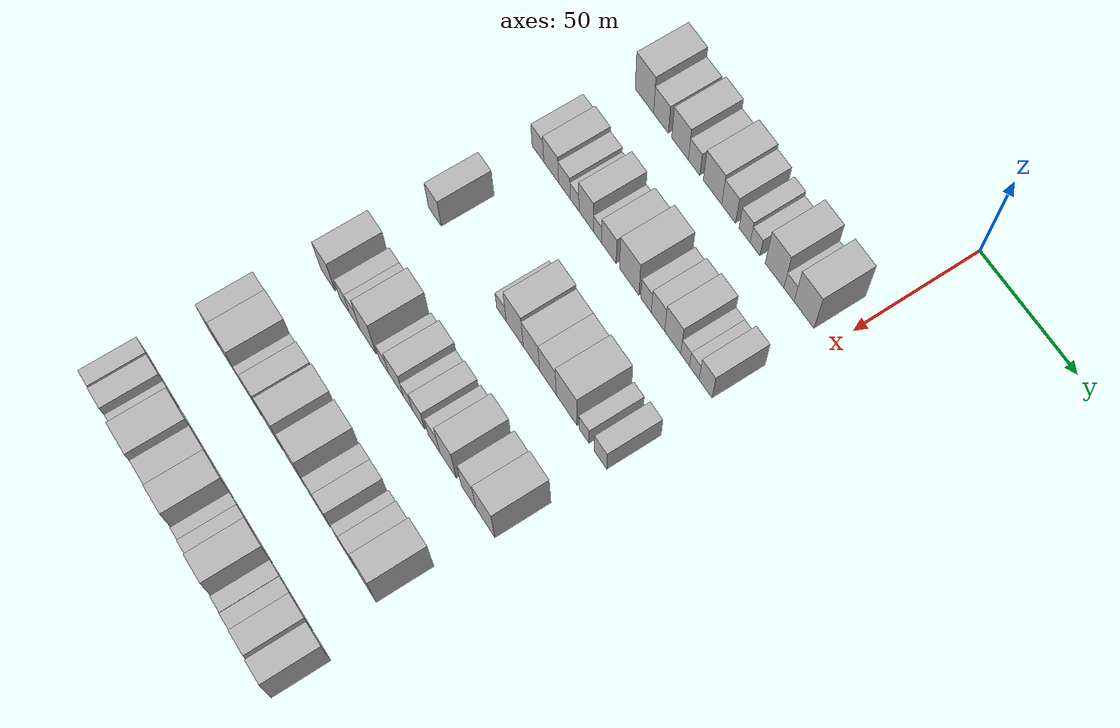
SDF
<sdf version="1.6">
 <world name="default">
  <model name="building_59">
   <static>1</static>
   <pose>50.0000 -103.9284 0 0.000000 0.000000 0.000000</pose>
   <link name="link">
    <pose>0 0 12.00 0 0 0</pose>
    <collision name="collision"><geometry><box><size>20.0000 10.9934 24.0000</size></box></geometry></collision>
    <visual name="visual">
     <cast_shadows>0</cast_shadows>
     <geometry><box><size>20.0000 10.9934 24.0000</size></box></geometry>
     <material>
      <script>
       <uri>model://HANNAS_wall/materials/scripts</uri>
       <uri>model://HANNAS_wall/materials/textures</uri>
       <name>vrc/HANNAS_wall</name>
      </script>
     </material>
    </visual>
   </link>
  </model>
  <model name="building_60">
   <static>1</static>
   <pose>50.0000 -94.0672 0 0.000000 0.000000 0.000000</pose>
   <link name="link">
    <pose>0 0 9.00 0 0 0</pose>
    <collision name="collision"><geometry><box><size>20.0000 8.7290 18.0000</size></box></geometry></collision>
    <visual name="visual">
     <cast_shadows>0</cast_shadows>
     <geometry><box><size>20.0000 8.7290 18.0000</size></box></geometry>
     <material>
      <script>
       <uri>model://HANNAS_wall/materials/scripts</uri>
       <uri>model://HANNAS_wall/materials/textures</uri>
       <name>vrc/HANNAS_wall</name>
      </script>
     </material>
    </visual>
   </link>
  </model>
  <model name="building_61">
   <static>1</static>
   <pose>50.0000 -82.8539 0 0.000000 0.000000 0.000000</pose>
   <link name="link">
    <pose>0 0 10.50 0 0 0</pose>
    <collision name="collision"><geometry><box><size>20.0000 9.6976 21.0000</size></box></geometry></collision>
    <visual name="visual">
     <cast_shadows>0</cast_shadows>
     <geometry><box><size>20.0000 9.6976 21.0000</size></box></geometry>
     <material>
      <script>
       <uri>model://HANNAS_wall/materials/scripts</uri>
       <uri>model://HANNAS_wall/materials/textures</uri>
       <name>vrc/HANNAS_wall</name>
      </script>
     </material>
    </visual>
   </link>
  </model>
  <model name="building_62">
   <static>1</static>
   <pose>50.0000 -74.6640 0 0.000000 0.000000 0.000000</pose>
   <link name="link">
    <pose>0 0 7.50 0 0 0</pose>
    <collision name="collision"><geometry><box><size>20.0000 6.6820 15.0000</size></box></geometry></collision>
    <visual name="visual">
     <cast_shadows>0</cast_shadows>
     <geometry><box><size>20.0000 6.6820 15.0000</size></box></geometry>
     <material>
      <script>
       <uri>model://HANNAS_wall/materials/scripts</uri>
       <uri>model://HANNAS_wall/materials/textures</uri>
       <name>vrc/HANNAS_wall</name>
      </script>
     </material>
    </visual>
   </link>
  </model>
  <model name="building_63">
   <static>1</static>
   <pose>50.0000 -64.0740 0 0.000000 0.000000 0.000000</pose>
   <link name="link">
    <pose>0 0 10.50 0 0 0</pose>
    <collision name="collision"><geometry><box><size>20.0000 10.4980 21.0000</size></box></geometry></collision>
    <visual name="visual">
     <cast_shadows>0</cast_shadows>
     <geometry><box><size>20.0000 10.4980 21.0000</size></box></geometry>
     <material>
      <script>
       <uri>model://HANNAS_wall/materials/scripts</uri>
       <uri>model://HANNAS_wall/materials/textures</uri>
       <name>vrc/HANNAS_wall</name>
      </script>
     </material>
    </visual>
   </link>
  </model>
  <model name="building_64">
   <static>1</static>
   <pose>50.0000 -54.8764 0 0.000000 0.000000 0.000000</pose>
   <link name="link">
    <pose>0 0 9.00 0 0 0</pose>
    <collision name="collision"><geometry><box><size>20.0000 7.8972 18.0000</size></box></geometry></collision>
    <visual name="visual">
     <cast_shadows>0</cast_shadows>
     <geometry><box><size>20.0000 7.8972 18.0000</size></box></geometry>
     <material>
      <script>
       <uri>model://HANNAS_wall/materials/scripts</uri>
       <uri>model://HANNAS_wall/materials/textures</uri>
       <name>vrc/HANNAS_wall</name>
      </script>
     </material>
    </visual>
   </link>
  </model>
  <model name="building_65">
   <static>1</static>
   <pose>50.0000 -45.8027 0 0.000000 0.000000 0.000000</pose>
   <link name="link">
    <pose>0 0 7.50 0 0 0</pose>
    <collision name="collision"><geometry><box><size>20.0000 6.2502 15.0000</size></box></geometry></collision>
    <visual name="visual">
     <cast_shadows>0</cast_shadows>
     <geometry><box><size>20.0000 6.2502 15.0000</size></box></geometry>
     <material>
      <script>
       <uri>model://HANNAS_wall/materials/scripts</uri>
       <uri>model://HANNAS_wall/materials/textures</uri>
       <name>vrc/HANNAS_wall</name>
      </script>
     </material>
    </visual>
   </link>
  </model>
  <model name="building_66">
   <static>1</static>
   <pose>50.0000 -39.9302 0 0.000000 0.000000 0.000000</pose>
   <link name="link">
    <pose>0 0 6.00 0 0 0</pose>
    <collision name="collision"><geometry><box><size>20.0000 5.4947 12.0000</size></box></geometry></collision>
    <visual name="visual">
     <cast_shadows>0</cast_shadows>
     <geometry><box><size>20.0000 5.4947 12.0000</size></box></geometry>
     <material>
      <script>
       <uri>model://HANNAS_wall/materials/scripts</uri>
       <uri>model://HANNAS_wall/materials/textures</uri>
       <name>vrc/HANNAS_wall</name>
      </script>
     </material>
    </visual>
   </link>
  </model>
  <model name="building_67">
   <static>1</static>
   <pose>50.0000 -29.0658 0 0.000000 0.000000 0.000000</pose>
   <link name="link">
    <pose>0 0 12.00 0 0 0</pose>
    <collision name="collision"><geometry><box><size>20.0000 10.2342 24.0000</size></box></geometry></collision>
    <visual name="visual">
     <cast_shadows>0</cast_shadows>
     <geometry><box><size>20.0000 10.2342 24.0000</size></box></geometry>
     <material>
      <script>
       <uri>model://HANNAS_wall/materials/scripts</uri>
       <uri>model://HANNAS_wall/materials/textures</uri>
       <name>vrc/HANNAS_wall</name>
      </script>
     </material>
    </visual>
   </link>
  </model>
  <model name="building_68">
   <static>1</static>
   <pose>50.0000 -21.1430 0 0.000000 0.000000 0.000000</pose>
   <link name="link">
    <pose>0 0 6.00 0 0 0</pose>
    <collision name="collision"><geometry><box><size>20.0000 5.6113 12.0000</size></box></geometry></collision>
    <visual name="visual">
     <cast_shadows>0</cast_shadows>
     <geometry><box><size>20.0000 5.6113 12.0000</size></box></geometry>
     <material>
      <script>
       <uri>model://HANNAS_wall/materials/scripts</uri>
       <uri>model://HANNAS_wall/materials/textures</uri>
       <name>vrc/HANNAS_wall</name>
      </script>
     </material>
    </visual>
   </link>
  </model>
  <model name="building_69">
   <static>1</static>
   <pose>50.0000 -12.9018 0 0.000000 0.000000 0.000000</pose>
   <link name="link">
    <pose>0 0 12.00 0 0 0</pose>
    <collision name="collision"><geometry><box><size>20.0000 10.8712 24.0000</size></box></geometry></collision>
    <visual name="visual">
     <cast_shadows>0</cast_shadows>
     <geometry><box><size>20.0000 10.8712 24.0000</size></box></geometry>
     <material>
      <script>
       <uri>model://HANNAS_wall/materials/scripts</uri>
       <uri>model://HANNAS_wall/materials/textures</uri>
       <name>vrc/HANNAS_wall</name>
      </script>
     </material>
    </visual>
   </link>
  </model>
  <model name="building_197">
   <static>1</static>
   <pose>90.0000 -106.6463 0 0.000000 0.000000 0.000000</pose>
   <link name="link">
    <pose>0 0 7.50 0 0 0</pose>
    <collision name="collision"><geometry><box><size>20.0000 7.0542 15.0000</size></box></geometry></collision>
    <visual name="visual">
     <cast_shadows>0</cast_shadows>
     <geometry><box><size>20.0000 7.0542 15.0000</size></box></geometry>
     <material>
      <script>
       <uri>model://HANNAS_wall/materials/scripts</uri>
       <uri>model://HANNAS_wall/materials/textures</uri>
       <name>vrc/HANNAS_wall</name>
      </script>
     </material>
    </visual>
   </link>
  </model>
  <model name="building_198">
   <static>1</static>
   <pose>90.0000 -98.6274 0 0.000000 0.000000 0.000000</pose>
   <link name="link">
    <pose>0 0 9.00 0 0 0</pose>
    <collision name="collision"><geometry><box><size>20.0000 8.9837 18.0000</size></box></geometry></collision>
    <visual name="visual">
     <cast_shadows>0</cast_shadows>
     <geometry><box><size>20.0000 8.9837 18.0000</size></box></geometry>
     <material>
      <script>
       <uri>model://HANNAS_wall/materials/scripts</uri>
       <uri>model://HANNAS_wall/materials/textures</uri>
       <name>vrc/HANNAS_wall</name>
      </script>
     </material>
    </visual>
   </link>
  </model>
  <model name="building_199">
   <static>1</static>
   <pose>90.0000 -90.6472 0 0.000000 0.000000 0.000000</pose>
   <link name="link">
    <pose>0 0 7.50 0 0 0</pose>
    <collision name="collision"><geometry><box><size>20.0000 6.9767 15.0000</size></box></geometry></collision>
    <visual name="visual">
     <cast_shadows>0</cast_shadows>
     <geometry><box><size>20.0000 6.9767 15.0000</size></box></geometry>
     <material>
      <script>
       <uri>model://HANNAS_wall/materials/scripts</uri>
       <uri>model://HANNAS_wall/materials/textures</uri>
       <name>vrc/HANNAS_wall</name>
      </script>
     </material>
    </visual>
   </link>
  </model>
  <model name="building_200">
   <static>1</static>
   <pose>90.0000 -84.5414 0 0.000000 0.000000 0.000000</pose>
   <link name="link">
    <pose>0 0 6.00 0 0 0</pose>
    <collision name="collision"><geometry><box><size>20.0000 5.2349 12.0000</size></box></geometry></collision>
    <visual name="visual">
     <cast_shadows>0</cast_shadows>
     <geometry><box><size>20.0000 5.2349 12.0000</size></box></geometry>
     <material>
      <script>
       <uri>model://HANNAS_wall/materials/scripts</uri>
       <uri>model://HANNAS_wall/materials/textures</uri>
       <name>vrc/HANNAS_wall</name>
      </script>
     </material>
    </visual>
   </link>
  </model>
  <model name="building_201">
   <static>1</static>
   <pose>90.0000 -77.6360 0 0.000000 0.000000 0.000000</pose>
   <link name="link">
    <pose>0 0 10.50 0 0 0</pose>
    <collision name="collision"><geometry><box><size>20.0000 8.5759 21.0000</size></box></geometry></collision>
    <visual name="visual">
     <cast_shadows>0</cast_shadows>
     <geometry><box><size>20.0000 8.5759 21.0000</size></box></geometry>
     <material>
      <script>
       <uri>model://HANNAS_wall/materials/scripts</uri>
       <uri>model://HANNAS_wall/materials/textures</uri>
       <name>vrc/HANNAS_wall</name>
      </script>
     </material>
    </visual>
   </link>
  </model>
  <model name="building_202">
   <static>1</static>
   <pose>90.0000 -70.9441 0 0.000000 0.000000 0.000000</pose>
   <link name="link">
    <pose>0 0 6.00 0 0 0</pose>
    <collision name="collision"><geometry><box><size>20.0000 4.8079 12.0000</size></box></geometry></collision>
    <visual name="visual">
     <cast_shadows>0</cast_shadows>
     <geometry><box><size>20.0000 4.8079 12.0000</size></box></geometry>
     <material>
      <script>
       <uri>model://HANNAS_wall/materials/scripts</uri>
       <uri>model://HANNAS_wall/materials/textures</uri>
       <name>vrc/HANNAS_wall</name>
      </script>
     </material>
    </visual>
   </link>
  </model>
  <model name="building_203">
   <static>1</static>
   <pose>90.0000 -64.2863 0 0.000000 0.000000 0.000000</pose>
   <link name="link">
    <pose>0 0 9.00 0 0 0</pose>
    <collision name="collision"><geometry><box><size>20.0000 8.5078 18.0000</size></box></geometry></collision>
    <visual name="visual">
     <cast_shadows>0</cast_shadows>
     <geometry><box><size>20.0000 8.5078 18.0000</size></box></geometry>
     <material>
      <script>
       <uri>model://HANNAS_wall/materials/scripts</uri>
       <uri>model://HANNAS_wall/materials/textures</uri>
       <name>vrc/HANNAS_wall</name>
      </script>
     </material>
    </visual>
   </link>
  </model>
  <model name="building_204">
   <static>1</static>
   <pose>90.0000 -52.4618 0 0.000000 0.000000 0.000000</pose>
   <link name="link">
    <pose>0 0 12.00 0 0 0</pose>
    <collision name="collision"><geometry><box><size>20.0000 11.1412 24.0000</size></box></geometry></collision>
    <visual name="visual">
     <cast_shadows>0</cast_shadows>
     <geometry><box><size>20.0000 11.1412 24.0000</size></box></geometry>
     <material>
      <script>
       <uri>model://HANNAS_wall/materials/scripts</uri>
       <uri>model://HANNAS_wall/materials/textures</uri>
       <name>vrc/HANNAS_wall</name>
      </script>
     </material>
    </visual>
   </link>
  </model>
  <model name="building_205">
   <static>1</static>
   <pose>90.0000 -42.8701 0 0.000000 0.000000 0.000000</pose>
   <link name="link">
    <pose>0 0 7.50 0 0 0</pose>
    <collision name="collision"><geometry><box><size>20.0000 6.0421 15.0000</size></box></geometry></collision>
    <visual name="visual">
     <cast_shadows>0</cast_shadows>
     <geometry><box><size>20.0000 6.0421 15.0000</size></box></geometry>
     <material>
      <script>
       <uri>model://HANNAS_wall/materials/scripts</uri>
       <uri>model://HANNAS_wall/materials/textures</uri>
       <name>vrc/HANNAS_wall</name>
      </script>
     </material>
    </visual>
   </link>
  </model>
  <model name="building_206">
   <static>1</static>
   <pose>90.0000 -36.0428 0 0.000000 0.000000 0.000000</pose>
   <link name="link">
    <pose>0 0 9.00 0 0 0</pose>
    <collision name="collision"><geometry><box><size>20.0000 7.6125 18.0000</size></box></geometry></collision>
    <visual name="visual">
     <cast_shadows>0</cast_shadows>
     <geometry><box><size>20.0000 7.6125 18.0000</size></box></geometry>
     <material>
      <script>
       <uri>model://HANNAS_wall/materials/scripts</uri>
       <uri>model://HANNAS_wall/materials/textures</uri>
       <name>vrc/HANNAS_wall</name>
      </script>
     </material>
    </visual>
   </link>
  </model>
  <model name="building_207">
   <static>1</static>
   <pose>90.0000 -27.7088 0 0.000000 0.000000 0.000000</pose>
   <link name="link">
    <pose>0 0 10.50 0 0 0</pose>
    <collision name="collision"><geometry><box><size>20.0000 9.0556 21.0000</size></box></geometry></collision>
    <visual name="visual">
     <cast_shadows>0</cast_shadows>
     <geometry><box><size>20.0000 9.0556 21.0000</size></box></geometry>
     <material>
      <script>
       <uri>model://HANNAS_wall/materials/scripts</uri>
       <uri>model://HANNAS_wall/materials/textures</uri>
       <name>vrc/HANNAS_wall</name>
      </script>
     </material>
    </visual>
   </link>
  </model>
  <model name="building_208">
   <static>1</static>
   <pose>90.0000 -20.7755 0 0.000000 0.000000 0.000000</pose>
   <link name="link">
    <pose>0 0 6.00 0 0 0</pose>
    <collision name="collision"><geometry><box><size>20.0000 4.8109 12.0000</size></box></geometry></collision>
    <visual name="visual">
     <cast_shadows>0</cast_shadows>
     <geometry><box><size>20.0000 4.8109 12.0000</size></box></geometry>
     <material>
      <script>
       <uri>model://HANNAS_wall/materials/scripts</uri>
       <uri>model://HANNAS_wall/materials/textures</uri>
       <name>vrc/HANNAS_wall</name>
      </script>
     </material>
    </visual>
   </link>
  </model>
  <model name="building_209">
   <static>1</static>
   <pose>90.0000 -15.6992 0 0.000000 0.000000 0.000000</pose>
   <link name="link">
    <pose>0 0 6.00 0 0 0</pose>
    <collision name="collision"><geometry><box><size>20.0000 5.3416 12.0000</size></box></geometry></collision>
    <visual name="visual">
     <cast_shadows>0</cast_shadows>
     <geometry><box><size>20.0000 5.3416 12.0000</size></box></geometry>
     <material>
      <script>
       <uri>model://HANNAS_wall/materials/scripts</uri>
       <uri>model://HANNAS_wall/materials/textures</uri>
       <name>vrc/HANNAS_wall</name>
      </script>
     </material>
    </visual>
   </link>
  </model>
  <model name="building_210">
   <static>1</static>
   <pose>90.0000 -9.4069 0 0.000000 0.000000 0.000000</pose>
   <link name="link">
    <pose>0 0 9.00 0 0 0</pose>
    <collision name="collision"><geometry><box><size>20.0000 7.2430 18.0000</size></box></geometry></collision>
    <visual name="visual">
     <cast_shadows>0</cast_shadows>
     <geometry><box><size>20.0000 7.2430 18.0000</size></box></geometry>
     <material>
      <script>
       <uri>model://HANNAS_wall/materials/scripts</uri>
       <uri>model://HANNAS_wall/materials/textures</uri>
       <name>vrc/HANNAS_wall</name>
      </script>
     </material>
    </visual>
   </link>
  </model>
  <model name="building_340">
   <static>1</static>
   <pose>130.0000 -105.5486 0 0.000000 0.000000 0.000000</pose>
   <link name="link">
    <pose>0 0 9.00 0 0 0</pose>
    <collision name="collision"><geometry><box><size>20.0000 7.8454 18.0000</size></box></geometry></collision>
    <visual name="visual">
     <cast_shadows>0</cast_shadows>
     <geometry><box><size>20.0000 7.8454 18.0000</size></box></geometry>
     <material>
      <script>
       <uri>model://HANNAS_wall/materials/scripts</uri>
       <uri>model://HANNAS_wall/materials/textures</uri>
       <name>vrc/HANNAS_wall</name>
      </script>
     </material>
    </visual>
   </link>
  </model>
  <model name="building_341">
   <static>1</static>
   <pose>130.0000 -65.0687 0 0.000000 0.000000 0.000000</pose>
   <link name="link">
    <pose>0 0 6.00 0 0 0</pose>
    <collision name="collision"><geometry><box><size>20.0000 5.7048 12.0000</size></box></geometry></collision>
    <visual name="visual">
     <cast_shadows>0</cast_shadows>
     <geometry><box><size>20.0000 5.7048 12.0000</size></box></geometry>
     <material>
      <script>
       <uri>model://HANNAS_wall/materials/scripts</uri>
       <uri>model://HANNAS_wall/materials/textures</uri>
       <name>vrc/HANNAS_wall</name>
      </script>
     </material>
    </visual>
   </link>
  </model>
  <model name="building_342">
   <static>1</static>
   <pose>130.0000 -57.1582 0 0.000000 0.000000 0.000000</pose>
   <link name="link">
    <pose>0 0 12.00 0 0 0</pose>
    <collision name="collision"><geometry><box><size>20.0000 10.1163 24.0000</size></box></geometry></collision>
    <visual name="visual">
     <cast_shadows>0</cast_shadows>
     <geometry><box><size>20.0000 10.1163 24.0000</size></box></geometry>
     <material>
      <script>
       <uri>model://HANNAS_wall/materials/scripts</uri>
       <uri>model://HANNAS_wall/materials/textures</uri>
       <name>vrc/HANNAS_wall</name>
      </script>
     </material>
    </visual>
   </link>
  </model>
  <model name="building_343">
   <static>1</static>
   <pose>130.0000 -47.3584 0 0.000000 0.000000 0.000000</pose>
   <link name="link">
    <pose>0 0 10.50 0 0 0</pose>
    <collision name="collision"><geometry><box><size>20.0000 9.4832 21.0000</size></box></geometry></collision>
    <visual name="visual">
     <cast_shadows>0</cast_shadows>
     <geometry><box><size>20.0000 9.4832 21.0000</size></box></geometry>
     <material>
      <script>
       <uri>model://HANNAS_wall/materials/scripts</uri>
       <uri>model://HANNAS_wall/materials/textures</uri>
       <name>vrc/HANNAS_wall</name>
      </script>
     </material>
    </visual>
   </link>
  </model>
  <model name="building_344">
   <static>1</static>
   <pose>130.0000 -37.7535 0 0.000000 0.000000 0.000000</pose>
   <link name="link">
    <pose>0 0 10.50 0 0 0</pose>
    <collision name="collision"><geometry><box><size>20.0000 9.7265 21.0000</size></box></geometry></collision>
    <visual name="visual">
     <cast_shadows>0</cast_shadows>
     <geometry><box><size>20.0000 9.7265 21.0000</size></box></geometry>
     <material>
      <script>
       <uri>model://HANNAS_wall/materials/scripts</uri>
       <uri>model://HANNAS_wall/materials/textures</uri>
       <name>vrc/HANNAS_wall</name>
      </script>
     </material>
    </visual>
   </link>
  </model>
  <model name="building_345">
   <static>1</static>
   <pose>130.0000 -26.9339 0 0.000000 0.000000 0.000000</pose>
   <link name="link">
    <pose>0 0 12.00 0 0 0</pose>
    <collision name="collision"><geometry><box><size>20.0000 11.9128 24.0000</size></box></geometry></collision>
    <visual name="visual">
     <cast_shadows>0</cast_shadows>
     <geometry><box><size>20.0000 11.9128 24.0000</size></box></geometry>
     <material>
      <script>
       <uri>model://HANNAS_wall/materials/scripts</uri>
       <uri>model://HANNAS_wall/materials/textures</uri>
       <name>vrc/HANNAS_wall</name>
      </script>
     </material>
    </visual>
   </link>
  </model>
  <model name="building_346">
   <static>1</static>
   <pose>130.0000 -17.0940 0 0.000000 0.000000 0.000000</pose>
   <link name="link">
    <pose>0 0 6.00 0 0 0</pose>
    <collision name="collision"><geometry><box><size>20.0000 5.7670 12.0000</size></box></geometry></collision>
    <visual name="visual">
     <cast_shadows>0</cast_shadows>
     <geometry><box><size>20.0000 5.7670 12.0000</size></box></geometry>
     <material>
      <script>
       <uri>model://HANNAS_wall/materials/scripts</uri>
       <uri>model://HANNAS_wall/materials/textures</uri>
       <name>vrc/HANNAS_wall</name>
      </script>
     </material>
    </visual>
   </link>
  </model>
  <model name="building_347">
   <static>1</static>
   <pose>130.0000 -7.7747 0 0.000000 0.000000 0.000000</pose>
   <link name="link">
    <pose>0 0 7.50 0 0 0</pose>
    <collision name="collision"><geometry><box><size>20.0000 6.8717 15.0000</size></box></geometry></collision>
    <visual name="visual">
     <cast_shadows>0</cast_shadows>
     <geometry><box><size>20.0000 6.8717 15.0000</size></box></geometry>
     <material>
      <script>
       <uri>model://HANNAS_wall/materials/scripts</uri>
       <uri>model://HANNAS_wall/materials/textures</uri>
       <name>vrc/HANNAS_wall</name>
      </script>
     </material>
    </visual>
   </link>
  </model>
  <model name="building_464">
   <static>1</static>
   <pose>170.0000 -105.1804 0 0.000000 0.000000 0.000000</pose>
   <link name="link">
    <pose>0 0 10.50 0 0 0</pose>
    <collision name="collision"><geometry><box><size>20.0000 8.9464 21.0000</size></box></geometry></collision>
    <visual name="visual">
     <cast_shadows>0</cast_shadows>
     <geometry><box><size>20.0000 8.9464 21.0000</size></box></geometry>
     <material>
      <script>
       <uri>model://HANNAS_wall/materials/scripts</uri>
       <uri>model://HANNAS_wall/materials/textures</uri>
       <name>vrc/HANNAS_wall</name>
      </script>
     </material>
    </visual>
   </link>
  </model>
  <model name="building_465">
   <static>1</static>
   <pose>170.0000 -94.6784 0 0.000000 0.000000 0.000000</pose>
   <link name="link">
    <pose>0 0 7.50 0 0 0</pose>
    <collision name="collision"><geometry><box><size>20.0000 6.0577 15.0000</size></box></geometry></collision>
    <visual name="visual">
     <cast_shadows>0</cast_shadows>
     <geometry><box><size>20.0000 6.0577 15.0000</size></box></geometry>
     <material>
      <script>
       <uri>model://HANNAS_wall/materials/scripts</uri>
       <uri>model://HANNAS_wall/materials/textures</uri>
       <name>vrc/HANNAS_wall</name>
      </script>
     </material>
    </visual>
   </link>
  </model>
  <model name="building_466">
   <static>1</static>
   <pose>170.0000 -88.3247 0 0.000000 0.000000 0.000000</pose>
   <link name="link">
    <pose>0 0 7.50 0 0 0</pose>
    <collision name="collision"><geometry><box><size>20.0000 6.6497 15.0000</size></box></geometry></collision>
    <visual name="visual">
     <cast_shadows>0</cast_shadows>
     <geometry><box><size>20.0000 6.6497 15.0000</size></box></geometry>
     <material>
      <script>
       <uri>model://HANNAS_wall/materials/scripts</uri>
       <uri>model://HANNAS_wall/materials/textures</uri>
       <name>vrc/HANNAS_wall</name>
      </script>
     </material>
    </visual>
   </link>
  </model>
  <model name="building_467">
   <static>1</static>
   <pose>170.0000 -80.0457 0 0.000000 0.000000 0.000000</pose>
   <link name="link">
    <pose>0 0 12.00 0 0 0</pose>
    <collision name="collision"><geometry><box><size>20.0000 9.9085 24.0000</size></box></geometry></collision>
    <visual name="visual">
     <cast_shadows>0</cast_shadows>
     <geometry><box><size>20.0000 9.9085 24.0000</size></box></geometry>
     <material>
      <script>
       <uri>model://HANNAS_wall/materials/scripts</uri>
       <uri>model://HANNAS_wall/materials/textures</uri>
       <name>vrc/HANNAS_wall</name>
      </script>
     </material>
    </visual>
   </link>
  </model>
  <model name="building_468">
   <static>1</static>
   <pose>170.0000 -70.1857 0 0.000000 0.000000 0.000000</pose>
   <link name="link">
    <pose>0 0 6.00 0 0 0</pose>
    <collision name="collision"><geometry><box><size>20.0000 5.8115 12.0000</size></box></geometry></collision>
    <visual name="visual">
     <cast_shadows>0</cast_shadows>
     <geometry><box><size>20.0000 5.8115 12.0000</size></box></geometry>
     <material>
      <script>
       <uri>model://HANNAS_wall/materials/scripts</uri>
       <uri>model://HANNAS_wall/materials/textures</uri>
       <name>vrc/HANNAS_wall</name>
      </script>
     </material>
    </visual>
   </link>
  </model>
  <model name="building_469">
   <static>1</static>
   <pose>170.0000 -62.8395 0 0.000000 0.000000 0.000000</pose>
   <link name="link">
    <pose>0 0 9.00 0 0 0</pose>
    <collision name="collision"><geometry><box><size>20.0000 8.8808 18.0000</size></box></geometry></collision>
    <visual name="visual">
     <cast_shadows>0</cast_shadows>
     <geometry><box><size>20.0000 8.8808 18.0000</size></box></geometry>
     <material>
      <script>
       <uri>model://HANNAS_wall/materials/scripts</uri>
       <uri>model://HANNAS_wall/materials/textures</uri>
       <name>vrc/HANNAS_wall</name>
      </script>
     </material>
    </visual>
   </link>
  </model>
  <model name="building_470">
   <static>1</static>
   <pose>170.0000 -55.6870 0 0.000000 0.000000 0.000000</pose>
   <link name="link">
    <pose>0 0 6.00 0 0 0</pose>
    <collision name="collision"><geometry><box><size>20.0000 5.4242 12.0000</size></box></geometry></collision>
    <visual name="visual">
     <cast_shadows>0</cast_shadows>
     <geometry><box><size>20.0000 5.4242 12.0000</size></box></geometry>
     <material>
      <script>
       <uri>model://HANNAS_wall/materials/scripts</uri>
       <uri>model://HANNAS_wall/materials/textures</uri>
       <name>vrc/HANNAS_wall</name>
      </script>
     </material>
    </visual>
   </link>
  </model>
  <model name="building_471">
   <static>1</static>
   <pose>170.0000 -49.2799 0 0.000000 0.000000 0.000000</pose>
   <link name="link">
    <pose>0 0 7.50 0 0 0</pose>
    <collision name="collision"><geometry><box><size>20.0000 7.3900 15.0000</size></box></geometry></collision>
    <visual name="visual">
     <cast_shadows>0</cast_shadows>
     <geometry><box><size>20.0000 7.3900 15.0000</size></box></geometry>
     <material>
      <script>
       <uri>model://HANNAS_wall/materials/scripts</uri>
       <uri>model://HANNAS_wall/materials/textures</uri>
       <name>vrc/HANNAS_wall</name>
      </script>
     </material>
    </visual>
   </link>
  </model>
  <model name="building_472">
   <static>1</static>
   <pose>170.0000 -40.1173 0 0.000000 0.000000 0.000000</pose>
   <link name="link">
    <pose>0 0 7.50 0 0 0</pose>
    <collision name="collision"><geometry><box><size>20.0000 6.9351 15.0000</size></box></geometry></collision>
    <visual name="visual">
     <cast_shadows>0</cast_shadows>
     <geometry><box><size>20.0000 6.9351 15.0000</size></box></geometry>
     <material>
      <script>
       <uri>model://HANNAS_wall/materials/scripts</uri>
       <uri>model://HANNAS_wall/materials/textures</uri>
       <name>vrc/HANNAS_wall</name>
      </script>
     </material>
    </visual>
   </link>
  </model>
  <model name="building_473">
   <static>1</static>
   <pose>170.0000 -31.7857 0 0.000000 0.000000 0.000000</pose>
   <link name="link">
    <pose>0 0 12.00 0 0 0</pose>
    <collision name="collision"><geometry><box><size>20.0000 9.7280 24.0000</size></box></geometry></collision>
    <visual name="visual">
     <cast_shadows>0</cast_shadows>
     <geometry><box><size>20.0000 9.7280 24.0000</size></box></geometry>
     <material>
      <script>
       <uri>model://HANNAS_wall/materials/scripts</uri>
       <uri>model://HANNAS_wall/materials/textures</uri>
       <name>vrc/HANNAS_wall</name>
      </script>
     </material>
    </visual>
   </link>
  </model>
  <model name="building_474">
   <static>1</static>
   <pose>170.0000 -19.6623 0 0.000000 0.000000 0.000000</pose>
   <link name="link">
    <pose>0 0 10.50 0 0 0</pose>
    <collision name="collision"><geometry><box><size>20.0000 8.5188 21.0000</size></box></geometry></collision>
    <visual name="visual">
     <cast_shadows>0</cast_shadows>
     <geometry><box><size>20.0000 8.5188 21.0000</size></box></geometry>
     <material>
      <script>
       <uri>model://HANNAS_wall/materials/scripts</uri>
       <uri>model://HANNAS_wall/materials/textures</uri>
       <name>vrc/HANNAS_wall</name>
      </script>
     </material>
    </visual>
   </link>
  </model>
  <model name="building_475">
   <static>1</static>
   <pose>170.0000 -10.0335 0 0.000000 0.000000 0.000000</pose>
   <link name="link">
    <pose>0 0 12.00 0 0 0</pose>
    <collision name="collision"><geometry><box><size>20.0000 10.7388 24.0000</size></box></geometry></collision>
    <visual name="visual">
     <cast_shadows>0</cast_shadows>
     <geometry><box><size>20.0000 10.7388 24.0000</size></box></geometry>
     <material>
      <script>
       <uri>model://HANNAS_wall/materials/scripts</uri>
       <uri>model://HANNAS_wall/materials/textures</uri>
       <name>vrc/HANNAS_wall</name>
      </script>
     </material>
    </visual>
   </link>
  </model>
  <model name="building_601">
   <static>1</static>
   <pose>210.0000 -106.6088 0 0.000000 0.000000 0.000000</pose>
   <link name="link">
    <pose>0 0 10.50 0 0 0</pose>
    <collision name="collision"><geometry><box><size>20.0000 8.5231 21.0000</size></box></geometry></collision>
    <visual name="visual">
     <cast_shadows>0</cast_shadows>
     <geometry><box><size>20.0000 8.5231 21.0000</size></box></geometry>
     <material>
      <script>
       <uri>model://HANNAS_wall/materials/scripts</uri>
       <uri>model://HANNAS_wall/materials/textures</uri>
       <name>vrc/HANNAS_wall</name>
      </script>
     </material>
    </visual>
   </link>
  </model>
  <model name="building_602">
   <static>1</static>
   <pose>210.0000 -96.5797 0 0.000000 0.000000 0.000000</pose>
   <link name="link">
    <pose>0 0 12.00 0 0 0</pose>
    <collision name="collision"><geometry><box><size>20.0000 11.5351 24.0000</size></box></geometry></collision>
    <visual name="visual">
     <cast_shadows>0</cast_shadows>
     <geometry><box><size>20.0000 11.5351 24.0000</size></box></geometry>
     <material>
      <script>
       <uri>model://HANNAS_wall/materials/scripts</uri>
       <uri>model://HANNAS_wall/materials/textures</uri>
       <name>vrc/HANNAS_wall</name>
      </script>
     </material>
    </visual>
   </link>
  </model>
  <model name="building_603">
   <static>1</static>
   <pose>210.0000 -87.8937 0 0.000000 0.000000 0.000000</pose>
   <link name="link">
    <pose>0 0 6.00 0 0 0</pose>
    <collision name="collision"><geometry><box><size>20.0000 5.8368 12.0000</size></box></geometry></collision>
    <visual name="visual">
     <cast_shadows>0</cast_shadows>
     <geometry><box><size>20.0000 5.8368 12.0000</size></box></geometry>
     <material>
      <script>
       <uri>model://HANNAS_wall/materials/scripts</uri>
       <uri>model://HANNAS_wall/materials/textures</uri>
       <name>vrc/HANNAS_wall</name>
      </script>
     </material>
    </visual>
   </link>
  </model>
  <model name="building_604">
   <static>1</static>
   <pose>210.0000 -80.8818 0 0.000000 0.000000 0.000000</pose>
   <link name="link">
    <pose>0 0 9.00 0 0 0</pose>
    <collision name="collision"><geometry><box><size>20.0000 8.1870 18.0000</size></box></geometry></collision>
    <visual name="visual">
     <cast_shadows>0</cast_shadows>
     <geometry><box><size>20.0000 8.1870 18.0000</size></box></geometry>
     <material>
      <script>
       <uri>model://HANNAS_wall/materials/scripts</uri>
       <uri>model://HANNAS_wall/materials/textures</uri>
       <name>vrc/HANNAS_wall</name>
      </script>
     </material>
    </visual>
   </link>
  </model>
  <model name="building_605">
   <static>1</static>
   <pose>210.0000 -68.5495 0 0.000000 0.000000 0.000000</pose>
   <link name="link">
    <pose>0 0 12.00 0 0 0</pose>
    <collision name="collision"><geometry><box><size>20.0000 10.4777 24.0000</size></box></geometry></collision>
    <visual name="visual">
     <cast_shadows>0</cast_shadows>
     <geometry><box><size>20.0000 10.4777 24.0000</size></box></geometry>
     <material>
      <script>
       <uri>model://HANNAS_wall/materials/scripts</uri>
       <uri>model://HANNAS_wall/materials/textures</uri>
       <name>vrc/HANNAS_wall</name>
      </script>
     </material>
    </visual>
   </link>
  </model>
  <model name="building_606">
   <static>1</static>
   <pose>210.0000 -54.9947 0 0.000000 0.000000 0.000000</pose>
   <link name="link">
    <pose>0 0 12.00 0 0 0</pose>
    <collision name="collision"><geometry><box><size>20.0000 10.6319 24.0000</size></box></geometry></collision>
    <visual name="visual">
     <cast_shadows>0</cast_shadows>
     <geometry><box><size>20.0000 10.6319 24.0000</size></box></geometry>
     <material>
      <script>
       <uri>model://HANNAS_wall/materials/scripts</uri>
       <uri>model://HANNAS_wall/materials/textures</uri>
       <name>vrc/HANNAS_wall</name>
      </script>
     </material>
    </visual>
   </link>
  </model>
  <model name="building_607">
   <static>1</static>
   <pose>210.0000 -44.6542 0 0.000000 0.000000 0.000000</pose>
   <link name="link">
    <pose>0 0 7.50 0 0 0</pose>
    <collision name="collision"><geometry><box><size>20.0000 6.0492 15.0000</size></box></geometry></collision>
    <visual name="visual">
     <cast_shadows>0</cast_shadows>
     <geometry><box><size>20.0000 6.0492 15.0000</size></box></geometry>
     <material>
      <script>
       <uri>model://HANNAS_wall/materials/scripts</uri>
       <uri>model://HANNAS_wall/materials/textures</uri>
       <name>vrc/HANNAS_wall</name>
      </script>
     </material>
    </visual>
   </link>
  </model>
  <model name="building_608">
   <static>1</static>
   <pose>210.0000 -37.9871 0 0.000000 0.000000 0.000000</pose>
   <link name="link">
    <pose>0 0 7.50 0 0 0</pose>
    <collision name="collision"><geometry><box><size>20.0000 7.2850 15.0000</size></box></geometry></collision>
    <visual name="visual">
     <cast_shadows>0</cast_shadows>
     <geometry><box><size>20.0000 7.2850 15.0000</size></box></geometry>
     <material>
      <script>
       <uri>model://HANNAS_wall/materials/scripts</uri>
       <uri>model://HANNAS_wall/materials/textures</uri>
       <name>vrc/HANNAS_wall</name>
      </script>
     </material>
    </visual>
   </link>
  </model>
  <model name="building_609">
   <static>1</static>
   <pose>210.0000 -28.8348 0 0.000000 0.000000 0.000000</pose>
   <link name="link">
    <pose>0 0 6.00 0 0 0</pose>
    <collision name="collision"><geometry><box><size>20.0000 5.0197 12.0000</size></box></geometry></collision>
    <visual name="visual">
     <cast_shadows>0</cast_shadows>
     <geometry><box><size>20.0000 5.0197 12.0000</size></box></geometry>
     <material>
      <script>
       <uri>model://HANNAS_wall/materials/scripts</uri>
       <uri>model://HANNAS_wall/materials/textures</uri>
       <name>vrc/HANNAS_wall</name>
      </script>
     </material>
    </visual>
   </link>
  </model>
  <model name="building_610">
   <static>1</static>
   <pose>210.0000 -22.8183 0 0.000000 0.000000 0.000000</pose>
   <link name="link">
    <pose>0 0 7.50 0 0 0</pose>
    <collision name="collision"><geometry><box><size>20.0000 7.0132 15.0000</size></box></geometry></collision>
    <visual name="visual">
     <cast_shadows>0</cast_shadows>
     <geometry><box><size>20.0000 7.0132 15.0000</size></box></geometry>
     <material>
      <script>
       <uri>model://HANNAS_wall/materials/scripts</uri>
       <uri>model://HANNAS_wall/materials/textures</uri>
       <name>vrc/HANNAS_wall</name>
      </script>
     </material>
    </visual>
   </link>
  </model>
  <model name="building_611">
   <static>1</static>
   <pose>210.0000 -12.2128 0 0.000000 0.000000 0.000000</pose>
   <link name="link">
    <pose>0 0 12.00 0 0 0</pose>
    <collision name="collision"><geometry><box><size>20.0000 10.1978 24.0000</size></box></geometry></collision>
    <visual name="visual">
     <cast_shadows>0</cast_shadows>
     <geometry><box><size>20.0000 10.1978 24.0000</size></box></geometry>
     <material>
      <script>
       <uri>model://HANNAS_wall/materials/scripts</uri>
       <uri>model://HANNAS_wall/materials/textures</uri>
       <name>vrc/HANNAS_wall</name>
      </script>
     </material>
    </visual>
   </link>
  </model>
  <model name="building_741">
   <static>1</static>
   <pose>250.0000 -111.1093 0 0.000000 0.000000 0.000000</pose>
   <link name="link">
    <pose>0 0 7.50 0 0 0</pose>
    <collision name="collision"><geometry><box><size>20.0000 6.0170 15.0000</size></box></geometry></collision>
    <visual name="visual">
     <cast_shadows>0</cast_shadows>
     <geometry><box><size>20.0000 6.0170 15.0000</size></box></geometry>
     <material>
      <script>
       <uri>model://HANNAS_wall/materials/scripts</uri>
       <uri>model://HANNAS_wall/materials/textures</uri>
       <name>vrc/HANNAS_wall</name>
      </script>
     </material>
    </visual>
   </link>
  </model>
  <model name="building_742">
   <static>1</static>
   <pose>250.0000 -102.2613 0 0.000000 0.000000 0.000000</pose>
   <link name="link">
    <pose>0 0 9.00 0 0 0</pose>
    <collision name="collision"><geometry><box><size>20.0000 7.6792 18.0000</size></box></geometry></collision>
    <visual name="visual">
     <cast_shadows>0</cast_shadows>
     <geometry><box><size>20.0000 7.6792 18.0000</size></box></geometry>
     <material>
      <script>
       <uri>model://HANNAS_wall/materials/scripts</uri>
       <uri>model://HANNAS_wall/materials/textures</uri>
       <name>vrc/HANNAS_wall</name>
      </script>
     </material>
    </visual>
   </link>
  </model>
  <model name="building_743">
   <static>1</static>
   <pose>250.0000 -95.5894 0 0.000000 0.000000 0.000000</pose>
   <link name="link">
    <pose>0 0 6.00 0 0 0</pose>
    <collision name="collision"><geometry><box><size>20.0000 5.6645 12.0000</size></box></geometry></collision>
    <visual name="visual">
     <cast_shadows>0</cast_shadows>
     <geometry><box><size>20.0000 5.6645 12.0000</size></box></geometry>
     <material>
      <script>
       <uri>model://HANNAS_wall/materials/scripts</uri>
       <uri>model://HANNAS_wall/materials/textures</uri>
       <name>vrc/HANNAS_wall</name>
      </script>
     </material>
    </visual>
   </link>
  </model>
  <model name="building_744">
   <static>1</static>
   <pose>250.0000 -84.8845 0 0.000000 0.000000 0.000000</pose>
   <link name="link">
    <pose>0 0 12.00 0 0 0</pose>
    <collision name="collision"><geometry><box><size>20.0000 11.7454 24.0000</size></box></geometry></collision>
    <visual name="visual">
     <cast_shadows>0</cast_shadows>
     <geometry><box><size>20.0000 11.7454 24.0000</size></box></geometry>
     <material>
      <script>
       <uri>model://HANNAS_wall/materials/scripts</uri>
       <uri>model://HANNAS_wall/materials/textures</uri>
       <name>vrc/HANNAS_wall</name>
      </script>
     </material>
    </visual>
   </link>
  </model>
  <model name="building_745">
   <static>1</static>
   <pose>250.0000 -74.5157 0 0.000000 0.000000 0.000000</pose>
   <link name="link">
    <pose>0 0 9.00 0 0 0</pose>
    <collision name="collision"><geometry><box><size>20.0000 8.9921 18.0000</size></box></geometry></collision>
    <visual name="visual">
     <cast_shadows>0</cast_shadows>
     <geometry><box><size>20.0000 8.9921 18.0000</size></box></geometry>
     <material>
      <script>
       <uri>model://HANNAS_wall/materials/scripts</uri>
       <uri>model://HANNAS_wall/materials/textures</uri>
       <name>vrc/HANNAS_wall</name>
      </script>
     </material>
    </visual>
   </link>
  </model>
  <model name="building_746">
   <static>1</static>
   <pose>250.0000 -63.7791 0 0.000000 0.000000 0.000000</pose>
   <link name="link">
    <pose>0 0 10.50 0 0 0</pose>
    <collision name="collision"><geometry><box><size>20.0000 10.4811 21.0000</size></box></geometry></collision>
    <visual name="visual">
     <cast_shadows>0</cast_shadows>
     <geometry><box><size>20.0000 10.4811 21.0000</size></box></geometry>
     <material>
      <script>
       <uri>model://HANNAS_wall/materials/scripts</uri>
       <uri>model://HANNAS_wall/materials/textures</uri>
       <name>vrc/HANNAS_wall</name>
      </script>
     </material>
    </visual>
   </link>
  </model>
  <model name="building_747">
   <static>1</static>
   <pose>250.0000 -53.8195 0 0.000000 0.000000 0.000000</pose>
   <link name="link">
    <pose>0 0 6.00 0 0 0</pose>
    <collision name="collision"><geometry><box><size>20.0000 5.4382 12.0000</size></box></geometry></collision>
    <visual name="visual">
     <cast_shadows>0</cast_shadows>
     <geometry><box><size>20.0000 5.4382 12.0000</size></box></geometry>
     <material>
      <script>
       <uri>model://HANNAS_wall/materials/scripts</uri>
       <uri>model://HANNAS_wall/materials/textures</uri>
       <name>vrc/HANNAS_wall</name>
      </script>
     </material>
    </visual>
   </link>
  </model>
  <model name="building_748">
   <static>1</static>
   <pose>250.0000 -47.7191 0 0.000000 0.000000 0.000000</pose>
   <link name="link">
    <pose>0 0 7.50 0 0 0</pose>
    <collision name="collision"><geometry><box><size>20.0000 6.7626 15.0000</size></box></geometry></collision>
    <visual name="visual">
     <cast_shadows>0</cast_shadows>
     <geometry><box><size>20.0000 6.7626 15.0000</size></box></geometry>
     <material>
      <script>
       <uri>model://HANNAS_wall/materials/scripts</uri>
       <uri>model://HANNAS_wall/materials/textures</uri>
       <name>vrc/HANNAS_wall</name>
      </script>
     </material>
    </visual>
   </link>
  </model>
  <model name="building_749">
   <static>1</static>
   <pose>250.0000 -39.2090 0 0.000000 0.000000 0.000000</pose>
   <link name="link">
    <pose>0 0 10.50 0 0 0</pose>
    <collision name="collision"><geometry><box><size>20.0000 10.2578 21.0000</size></box></geometry></collision>
    <visual name="visual">
     <cast_shadows>0</cast_shadows>
     <geometry><box><size>20.0000 10.2578 21.0000</size></box></geometry>
     <material>
      <script>
       <uri>model://HANNAS_wall/materials/scripts</uri>
       <uri>model://HANNAS_wall/materials/textures</uri>
       <name>vrc/HANNAS_wall</name>
      </script>
     </material>
    </visual>
   </link>
  </model>
  <model name="building_750">
   <static>1</static>
   <pose>250.0000 -29.1878 0 0.000000 0.000000 0.000000</pose>
   <link name="link">
    <pose>0 0 6.00 0 0 0</pose>
    <collision name="collision"><geometry><box><size>20.0000 5.7845 12.0000</size></box></geometry></collision>
    <visual name="visual">
     <cast_shadows>0</cast_shadows>
     <geometry><box><size>20.0000 5.7845 12.0000</size></box></geometry>
     <material>
      <script>
       <uri>model://HANNAS_wall/materials/scripts</uri>
       <uri>model://HANNAS_wall/materials/textures</uri>
       <name>vrc/HANNAS_wall</name>
      </script>
     </material>
    </visual>
   </link>
  </model>
  <model name="building_751">
   <static>1</static>
   <pose>250.0000 -21.9938 0 0.000000 0.000000 0.000000</pose>
   <link name="link">
    <pose>0 0 7.50 0 0 0</pose>
    <collision name="collision"><geometry><box><size>20.0000 6.6036 15.0000</size></box></geometry></collision>
    <visual name="visual">
     <cast_shadows>0</cast_shadows>
     <geometry><box><size>20.0000 6.6036 15.0000</size></box></geometry>
     <material>
      <script>
       <uri>model://HANNAS_wall/materials/scripts</uri>
       <uri>model://HANNAS_wall/materials/textures</uri>
       <name>vrc/HANNAS_wall</name>
      </script>
     </material>
    </visual>
   </link>
  </model>
  <model name="building_752">
   <static>1</static>
   <pose>250.0000 -14.2935 0 0.000000 0.000000 0.000000</pose>
   <link name="link">
    <pose>0 0 9.00 0 0 0</pose>
    <collision name="collision"><geometry><box><size>20.0000 8.7970 18.0000</size></box></geometry></collision>
    <visual name="visual">
     <cast_shadows>0</cast_shadows>
     <geometry><box><size>20.0000 8.7970 18.0000</size></box></geometry>
     <material>
      <script>
       <uri>model://HANNAS_wall/materials/scripts</uri>
       <uri>model://HANNAS_wall/materials/textures</uri>
       <name>vrc/HANNAS_wall</name>
      </script>
     </material>
    </visual>
   </link>
  </model>
  <model name="building_753">
   <static>1</static>
   <pose>250.0000 -3.6615 0 0.000000 0.000000 0.000000</pose>
   <link name="link">
    <pose>0 0 10.50 0 0 0</pose>
    <collision name="collision"><geometry><box><size>20.0000 8.4671 21.0000</size></box></geometry></collision>
    <visual name="visual">
     <cast_shadows>0</cast_shadows>
     <geometry><box><size>20.0000 8.4671 21.0000</size></box></geometry>
     <material>
      <script>
       <uri>model://HANNAS_wall/materials/scripts</uri>
       <uri>model://HANNAS_wall/materials/textures</uri>
       <name>vrc/HANNAS_wall</name>
      </script>
     </material>
    </visual>
   </link>
  </model>
 </world>
</sdf>
